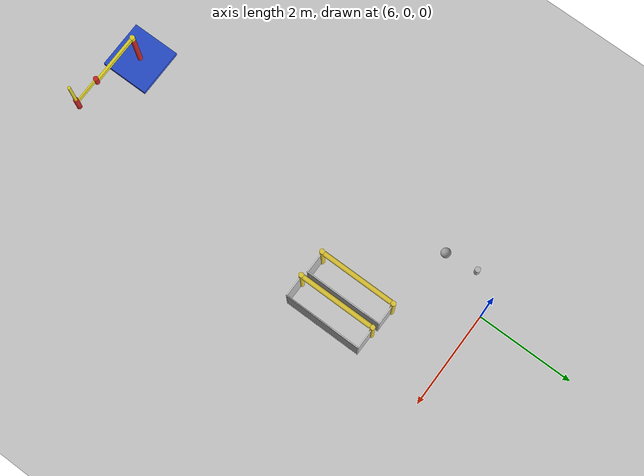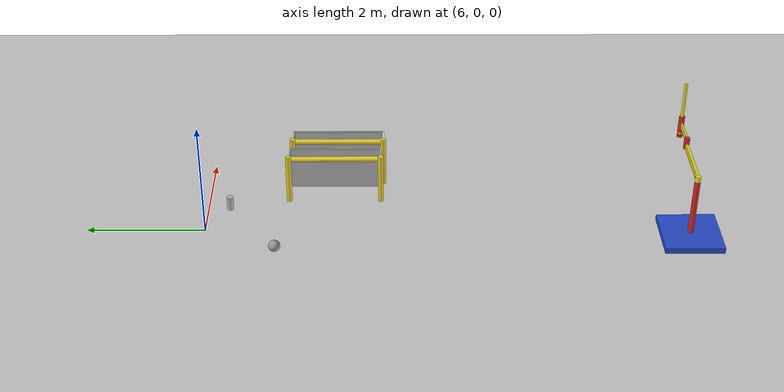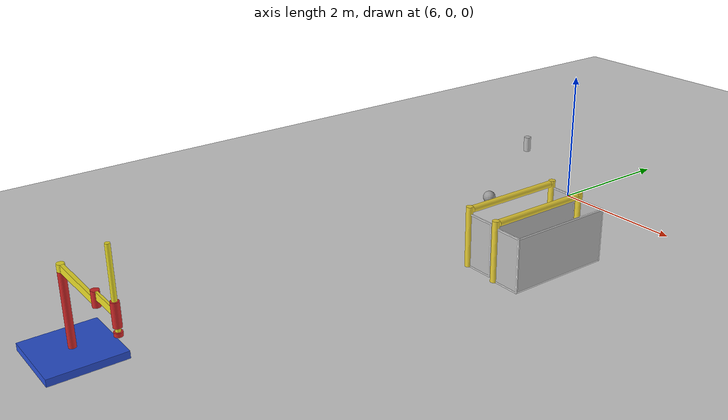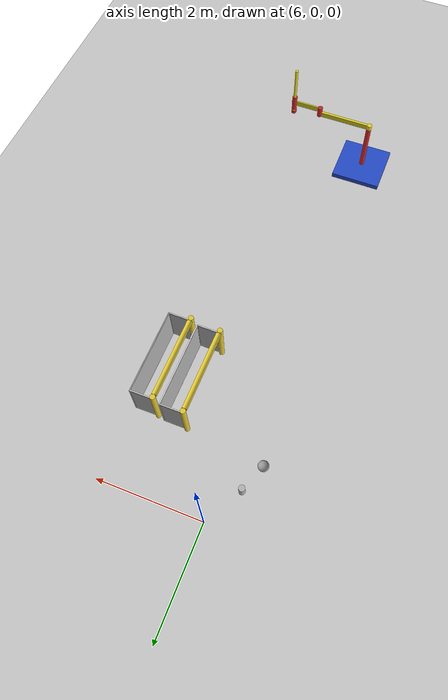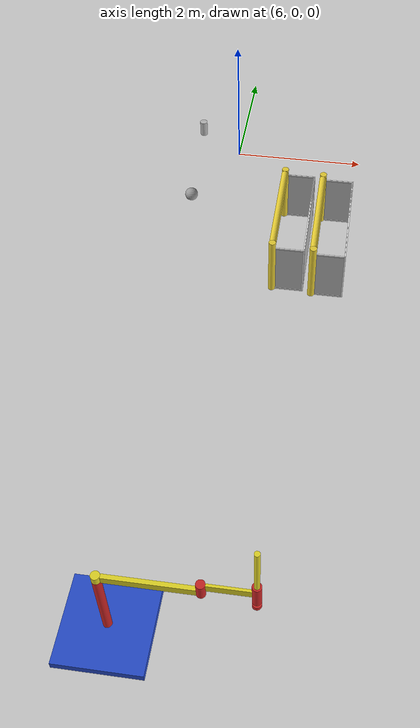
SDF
<sdf version="1.6">
 <world name="default">
  <model name="ground_plane">
   <static>1</static>
   <link name="link">
    <collision name="collision">
     <geometry><plane><normal>0 0 1</normal><size>100 100</size></plane></geometry>
     <surface><friction><ode><mu>100</mu><mu2>50</mu2></ode></friction></surface>
    </collision>
    <visual name="visual">
     <cast_shadows>0</cast_shadows>
     <geometry><plane><normal>0 0 1</normal><size>100 100</size></plane></geometry>
     <material>
      <script><uri>file://media/materials/scripts/gazebo.material</uri><name>Gazebo/Grey</name></script>
     </material>
    </visual>
   </link>
  </model>
  <model name="my_ball">
   <link name="link_0">
    <inertial>
     <mass>1</mass>
     <inertia><ixx>0.1</ixx><ixy>0</ixy><ixz>0</ixz><iyy>0.1</iyy><iyz>0</iyz><izz>0.1</izz></inertia>
    </inertial>
    <visual name="visual">
     <geometry><sphere><radius>0.1</radius></sphere></geometry>
     <material>
      <lighting>1</lighting>
      <script><uri>file://media/materials/scripts/gazebo.material</uri><name>Gazebo/Grey</name></script>
      <shader type="pixel"><normal_map>__default__</normal_map></shader>
      <ambient>1 1 1 1</ambient>
      <diffuse>1 1 1 1</diffuse>
      <specular>1 1 1 1</specular>
      <emissive>1 1 1 1</emissive>
     </material>
    </visual>
    <collision name="collision">
     <geometry><sphere><radius>0.1</radius></sphere></geometry>
     <surface>
      <friction>
       <ode><mu>1</mu><mu2>1</mu2><fdir1>0 0 0</fdir1><slip1>0</slip1><slip2>0</slip2></ode>
       <torsional>
        <coefficient>1</coefficient>
        <patch_radius>0</patch_radius>
        <surface_radius>0</surface_radius>
        <use_patch_radius>1</use_patch_radius>
        <ode><slip>0</slip></ode>
       </torsional>
      </friction>
      <bounce><restitution_coefficient>0</restitution_coefficient><threshold>1e+06</threshold></bounce>
      <contact>
       <collide_without_contact>0</collide_without_contact>
       <collide_without_contact_bitmask>1</collide_without_contact_bitmask>
       <collide_bitmask>1</collide_bitmask>
       <ode>
        <soft_cfm>0</soft_cfm>
        <soft_erp>0.2</soft_erp>
        <kp>1e+13</kp>
        <kd>1</kd>
        <max_vel>0.01</max_vel>
        <min_depth>0</min_depth>
       </ode>
       <bullet>
        <split_impulse>1</split_impulse>
        <split_impulse_penetration_threshold>-0.01</split_impulse_penetration_threshold>
        <soft_cfm>0</soft_cfm>
        <soft_erp>0.2</soft_erp>
        <kp>1e+13</kp>
        <kd>1</kd>
       </bullet>
      </contact>
     </surface>
    </collision>
   </link>
   <static>0</static>
   <pose>5.41442 -1.21795 0.1 0 -0 0</pose>
  </model>
  <model name="beer">
   <link name="link">
    <pose>0 0 0.115 0 -0 0</pose>
    <inertial>
     <mass>0.39</mass>
     <inertia><ixx>0.00058</ixx><ixy>0</ixy><ixz>0</ixz><iyy>0.00058</iyy><iyz>0</iyz><izz>0.00019</izz></inertia>
    </inertial>
    <collision name="collision">
     <geometry><cylinder><radius>0.055</radius><length>0.23</length></cylinder></geometry>
    </collision>
    <visual name="visual">
     <geometry><cylinder><radius>0.055</radius><length>0.23</length></cylinder></geometry>
     <material>
      <script>
       <uri>model://beer/materials/scripts</uri>
       <uri>model://beer/materials/textures</uri>
       <name>Beer/Diffuse</name>
      </script>
     </material>
    </visual>
   </link>
   <pose>5.52446 -0.527312 0.774991 3e-06 1.3e-05 0.000153</pose>
  </model>
  <model name="simple_arm">
   <link name="arm_base">
    <inertial>
     <pose>0 0 0.00099 0 -0 0</pose>
     <inertia><ixx>1.11</ixx><ixy>0</ixy><ixz>0</ixz><iyy>100.11</iyy><iyz>0</iyz><izz>1.01</izz></inertia>
     <mass>101</mass>
    </inertial>
    <collision name="arm_base_geom">
     <pose>0 0 0.05 0 -0 0</pose>
     <geometry><box><size>1 1 0.1</size></box></geometry>
    </collision>
    <visual name="arm_base_geom_visual">
     <pose>0 0 0.05 0 -0 0</pose>
     <geometry><box><size>1 1 0.1</size></box></geometry>
     <material>
      <script><uri>file://media/materials/scripts/gazebo.material</uri><name>Gazebo/Blue</name></script>
     </material>
    </visual>
    <collision name="arm_base_geom_arm_trunk">
     <pose>0 0 0.6 0 -0 0</pose>
     <geometry><cylinder><radius>0.05</radius><length>1</length></cylinder></geometry>
    </collision>
    <visual name="arm_base_geom_arm_trunk_visual">
     <pose>0 0 0.6 0 -0 0</pose>
     <geometry><cylinder><radius>0.05</radius><length>1</length></cylinder></geometry>
     <material>
      <script><uri>file://media/materials/scripts/gazebo.material</uri><name>Gazebo/Red</name></script>
     </material>
    </visual>
   </link>
   <link name="arm_shoulder_pan">
    <pose>0 0 1.1 0 -0 0</pose>
    <inertial>
     <pose>0.045455 0 0 0 -0 0</pose>
     <inertia><ixx>0.011</ixx><ixy>0</ixy><ixz>0</ixz><iyy>0.0225</iyy><iyz>0</iyz><izz>0.0135</izz></inertia>
     <mass>1.1</mass>
    </inertial>
    <collision name="arm_shoulder_pan_geom">
     <pose>0 0 0.05 0 -0 0</pose>
     <geometry><cylinder><radius>0.05</radius><length>0.1</length></cylinder></geometry>
    </collision>
    <visual name="arm_shoulder_pan_geom_visual">
     <pose>0 0 0.05 0 -0 0</pose>
     <geometry><cylinder><radius>0.05</radius><length>0.1</length></cylinder></geometry>
     <material>
      <script><uri>file://media/materials/scripts/gazebo.material</uri><name>Gazebo/Yellow</name></script>
     </material>
    </visual>
    <collision name="arm_shoulder_pan_geom_arm_shoulder">
     <pose>0.55 0 0.05 0 -0 0</pose>
     <geometry><box><size>1 0.05 0.1</size></box></geometry>
    </collision>
    <visual name="arm_shoulder_pan_geom_arm_shoulder_visual">
     <pose>0.55 0 0.05 0 -0 0</pose>
     <geometry><box><size>1 0.05 0.1</size></box></geometry>
     <material>
      <script><uri>file://media/materials/scripts/gazebo.material</uri><name>Gazebo/Yellow</name></script>
     </material>
    </visual>
   </link>
   <link name="arm_elbow_pan">
    <pose>1.05 0 1.1 0 -0 0</pose>
    <inertial>
     <pose>0.0875 0 0.083333 0 -0 0</pose>
     <inertia>
      <ixx>0.031</ixx>
      <ixy>0</ixy>
      <ixz>0.005</ixz>
      <iyy>0.07275</iyy>
      <iyz>0</iyz>
      <izz>0.04475</izz>
     </inertia>
     <mass>1.2</mass>
    </inertial>
    <collision name="arm_elbow_pan_geom">
     <pose>0 0 0.1 0 -0 0</pose>
     <geometry><cylinder><radius>0.05</radius><length>0.2</length></cylinder></geometry>
    </collision>
    <visual name="arm_elbow_pan_geom_visual">
     <pose>0 0 0.1 0 -0 0</pose>
     <geometry><cylinder><radius>0.05</radius><length>0.2</length></cylinder></geometry>
     <material>
      <script><uri>file://media/materials/scripts/gazebo.material</uri><name>Gazebo/Red</name></script>
     </material>
    </visual>
    <collision name="arm_elbow_pan_geom_arm_elbow">
     <pose>0.3 0 0.15 0 -0 0</pose>
     <geometry><box><size>0.5 0.03 0.1</size></box></geometry>
    </collision>
    <visual name="arm_elbow_pan_geom_arm_elbow_visual">
     <pose>0.3 0 0.15 0 -0 0</pose>
     <geometry><box><size>0.5 0.03 0.1</size></box></geometry>
     <material>
      <script><uri>file://media/materials/scripts/gazebo.material</uri><name>Gazebo/Yellow</name></script>
     </material>
    </visual>
    <collision name="arm_elbow_pan_geom_arm_wrist">
     <pose>0.55 0 0.15 0 -0 0</pose>
     <geometry><cylinder><radius>0.05</radius><length>0.3</length></cylinder></geometry>
    </collision>
    <visual name="arm_elbow_pan_geom_arm_wrist_visual">
     <pose>0.55 0 0.15 0 -0 0</pose>
     <geometry><cylinder><radius>0.05</radius><length>0.3</length></cylinder></geometry>
     <material>
      <script><uri>file://media/materials/scripts/gazebo.material</uri><name>Gazebo/Red</name></script>
     </material>
    </visual>
   </link>
   <link name="arm_wrist_lift">
    <pose>1.6 0 1.05 0 -0 0</pose>
    <inertial>
     <inertia><ixx>0.01</ixx><ixy>0</ixy><ixz>0</ixz><iyy>0.01</iyy><iyz>0</iyz><izz>0.001</izz></inertia>
     <mass>0.1</mass>
    </inertial>
    <collision name="arm_wrist_lift_geom">
     <pose>0 0 0.5 0 -0 0</pose>
     <geometry><cylinder><radius>0.03</radius><length>1</length></cylinder></geometry>
    </collision>
    <visual name="arm_wrist_lift_geom_visual">
     <pose>0 0 0.5 0 -0 0</pose>
     <geometry><cylinder><radius>0.03</radius><length>1</length></cylinder></geometry>
     <material>
      <script><uri>file://media/materials/scripts/gazebo.material</uri><name>Gazebo/Yellow</name></script>
     </material>
    </visual>
   </link>
   <link name="arm_wrist_roll">
    <pose>1.6 0 1 0 -0 0</pose>
    <inertial>
     <inertia><ixx>0.01</ixx><ixy>0</ixy><ixz>0</ixz><iyy>0.01</iyy><iyz>0</iyz><izz>0.001</izz></inertia>
     <mass>0.1</mass>
    </inertial>
    <collision name="arm_wrist_roll_geom">
     <pose>0 0 0.025 0 -0 0</pose>
     <geometry><cylinder><radius>0.05</radius><length>0.05</length></cylinder></geometry>
    </collision>
    <visual name="arm_wrist_roll_geom_visual">
     <pose>0 0 0.025 0 -0 0</pose>
     <geometry><cylinder><radius>0.05</radius><length>0.05</length></cylinder></geometry>
     <material>
      <script><uri>file://media/materials/scripts/gazebo.material</uri><name>Gazebo/Red</name></script>
     </material>
    </visual>
   </link>
   <joint name="arm_shoulder_pan_joint" type="revolute">
    <parent>arm_base</parent>
    <child>arm_shoulder_pan</child>
    <axis>
     <dynamics>
      <damping>1</damping>
      <friction>0</friction>
      <spring_reference>0</spring_reference>
      <spring_stiffness>0</spring_stiffness>
     </dynamics>
     <xyz>0 0 1</xyz>
     <use_parent_model_frame>1</use_parent_model_frame>
     <limit><lower>-1e+16</lower><upper>1e+16</upper></limit>
    </axis>
   </joint>
   <joint name="arm_elbow_pan_joint" type="revolute">
    <parent>arm_shoulder_pan</parent>
    <child>arm_elbow_pan</child>
    <axis>
     <dynamics>
      <damping>1</damping>
      <friction>0</friction>
      <spring_reference>0</spring_reference>
      <spring_stiffness>0</spring_stiffness>
     </dynamics>
     <xyz>0 0 1</xyz>
     <use_parent_model_frame>1</use_parent_model_frame>
     <limit><lower>-1e+16</lower><upper>1e+16</upper></limit>
    </axis>
   </joint>
   <joint name="arm_wrist_lift_joint" type="prismatic">
    <parent>arm_elbow_pan</parent>
    <child>arm_wrist_lift</child>
    <axis>
     <dynamics>
      <damping>1</damping>
      <friction>0</friction>
      <spring_reference>0</spring_reference>
      <spring_stiffness>0</spring_stiffness>
     </dynamics>
     <limit><lower>-0.8</lower><upper>0.1</upper></limit>
     <xyz>0 0 1</xyz>
     <use_parent_model_frame>1</use_parent_model_frame>
    </axis>
   </joint>
   <joint name="arm_wrist_roll_joint" type="revolute">
    <parent>arm_wrist_lift</parent>
    <child>arm_wrist_roll</child>
    <axis>
     <dynamics>
      <damping>1</damping>
      <friction>0</friction>
      <spring_reference>0</spring_reference>
      <spring_stiffness>0</spring_stiffness>
     </dynamics>
     <limit><lower>-2.99999</lower><upper>2.99999</upper></limit>
     <xyz>0 0 1</xyz>
     <use_parent_model_frame>1</use_parent_model_frame>
    </axis>
   </joint>
   <pose>5.81232 -8.21556 0 0 -0 0.001349</pose>
  </model>
  <model name="RoboCup 2014 SPL Goal">
   <static>1</static>
   <link name="left_post">
    <pose>0 0.8 0.45 0 -0 0</pose>
    <collision name="collision">
     <geometry><cylinder><radius>0.05</radius><length>0.9</length></cylinder></geometry>
    </collision>
    <visual name="visual">
     <geometry><cylinder><radius>0.05</radius><length>0.9</length></cylinder></geometry>
     <material>
      <script><uri>file://media/materials/scripts/gazebo.material</uri><name>Gazebo/ZincYellow</name></script>
     </material>
    </visual>
   </link>
   <link name="left_support_horiz_lower">
    <pose>0.24 0.8 0.01 0 -0 0</pose>
    <collision name="collision"><geometry><box><size>0.38 0.02 0.02</size></box></geometry></collision>
    <visual name="visual">
     <geometry><box><size>0.38 0.02 0.02</size></box></geometry>
     <material>
      <script><uri>file://media/materials/scripts/gazebo.material</uri><name>Gazebo/White</name></script>
     </material>
    </visual>
   </link>
   <link name="left_support_horiz_upper">
    <pose>0.24 0.8 0.79 0 -0 0</pose>
    <collision name="collision"><geometry><box><size>0.38 0.02 0.02</size></box></geometry></collision>
    <visual name="visual">
     <geometry><box><size>0.38 0.02 0.02</size></box></geometry>
     <material>
      <script><uri>file://media/materials/scripts/gazebo.material</uri><name>Gazebo/White</name></script>
     </material>
    </visual>
   </link>
   <link name="left_support_vertical">
    <pose>0.44 0.8 0.4 3.14159 1.57079 3.14159</pose>
    <collision name="collision"><geometry><box><size>0.8 0.02 0.02</size></box></geometry></collision>
    <visual name="visual">
     <geometry><box><size>0.8 0.02 0.02</size></box></geometry>
     <material>
      <script><uri>file://media/materials/scripts/gazebo.material</uri><name>Gazebo/White</name></script>
     </material>
    </visual>
   </link>
   <link name="right_support_horiz_lower">
    <pose>0.24 -0.8 0.01 0 -0 0</pose>
    <collision name="collision"><geometry><box><size>0.38 0.02 0.02</size></box></geometry></collision>
    <visual name="visual">
     <geometry><box><size>0.38 0.02 0.02</size></box></geometry>
     <material>
      <script><uri>file://media/materials/scripts/gazebo.material</uri><name>Gazebo/White</name></script>
     </material>
    </visual>
   </link>
   <link name="right_support_horiz_upper">
    <pose>0.24 -0.8 0.79 0 -0 0</pose>
    <collision name="collision"><geometry><box><size>0.38 0.02 0.02</size></box></geometry></collision>
    <visual name="visual">
     <geometry><box><size>0.38 0.02 0.02</size></box></geometry>
     <material>
      <script><uri>file://media/materials/scripts/gazebo.material</uri><name>Gazebo/White</name></script>
     </material>
    </visual>
   </link>
   <link name="right_support_vertical">
    <pose>0.44 -0.8 0.4 3.14159 1.57079 3.14159</pose>
    <collision name="collision"><geometry><box><size>0.8 0.02 0.02</size></box></geometry></collision>
    <visual name="visual">
     <geometry><box><size>0.8 0.02 0.02</size></box></geometry>
     <material>
      <script><uri>file://media/materials/scripts/gazebo.material</uri><name>Gazebo/White</name></script>
     </material>
    </visual>
   </link>
   <link name="center_support_horiz_lower">
    <pose>0.44 0 0.01 3.14159 1.57079 3.14159</pose>
    <collision name="collision"><geometry><box><size>0.02 1.58 0.02</size></box></geometry></collision>
    <visual name="visual">
     <geometry><box><size>0.02 1.58 0.02</size></box></geometry>
     <material>
      <script><uri>file://media/materials/scripts/gazebo.material</uri><name>Gazebo/White</name></script>
     </material>
    </visual>
   </link>
   <link name="center_support_horiz_upper">
    <pose>0.44 0 0.79 3.14159 1.57079 3.14159</pose>
    <collision name="collision"><geometry><box><size>0.02 1.58 0.02</size></box></geometry></collision>
    <visual name="visual">
     <geometry><box><size>0.02 1.58 0.02</size></box></geometry>
     <material>
      <script><uri>file://media/materials/scripts/gazebo.material</uri><name>Gazebo/White</name></script>
     </material>
    </visual>
   </link>
   <link name="right_post">
    <pose>0 -0.8 0.45 0 -0 0</pose>
    <collision name="collision">
     <geometry><cylinder><radius>0.05</radius><length>0.9</length></cylinder></geometry>
    </collision>
    <visual name="visual">
     <geometry><cylinder><radius>0.05</radius><length>0.9</length></cylinder></geometry>
     <material>
      <script><uri>file://media/materials/scripts/gazebo.material</uri><name>Gazebo/ZincYellow</name></script>
     </material>
    </visual>
   </link>
   <link name="crossbar">
    <pose>0 0 0.85 1.57 1.57 0</pose>
    <collision name="collision">
     <geometry><cylinder><radius>0.05</radius><length>1.5</length></cylinder></geometry>
    </collision>
    <visual name="visual">
     <geometry><cylinder><radius>0.05</radius><length>1.5</length></cylinder></geometry>
     <material>
      <script><uri>file://media/materials/scripts/gazebo.material</uri><name>Gazebo/ZincYellow</name></script>
     </material>
    </visual>
   </link>
   <link name="center_net">
    <pose>0.44 0 0.4 0 -0 0</pose>
    <collision name="collision"><geometry><box><size>0.01 1.6 0.8</size></box></geometry></collision>
    <visual name="visual">
     <geometry><box><size>0.01 1.6 0.8</size></box></geometry>
     <material>
      <script>
       <uri>model://robocup09_spl_field/materials/scripts/</uri>
       <uri>model://robocup09_spl_field/materials/textures/</uri>
       <name>RoboCup/Net</name>
      </script>
     </material>
    </visual>
   </link>
   <link name="left_net">
    <pose>0.24 0.8 0.4 0 -0 0</pose>
    <collision name="collision"><geometry><box><size>0.38 0.01 0.76</size></box></geometry></collision>
    <visual name="visual">
     <geometry><box><size>0.38 0.01 0.76</size></box></geometry>
     <material>
      <script>
       <uri>model://robocup09_spl_field/materials/scripts/</uri>
       <uri>model://robocup09_spl_field/materials/textures/</uri>
       <name>RoboCup/Net</name>
      </script>
     </material>
    </visual>
   </link>
   <link name="right_net">
    <pose>0.24 -0.8 0.4 0 -0 0</pose>
    <collision name="collision"><geometry><box><size>0.38 0.01 0.76</size></box></geometry></collision>
    <visual name="visual">
     <geometry><box><size>0.38 0.01 0.76</size></box></geometry>
     <material>
      <script>
       <uri>model://robocup09_spl_field/materials/scripts/</uri>
       <uri>model://robocup09_spl_field/materials/textures/</uri>
       <name>RoboCup/Net</name>
      </script>
     </material>
    </visual>
   </link>
   <pose>6.91215 -2.18608 0 0 -0 0</pose>
  </model>
  <model name="RoboCup 2014 SPL Goal_0">
   <static>1</static>
   <link name="left_post">
    <pose>0 0.8 0.45 0 -0 0</pose>
    <collision name="collision">
     <geometry><cylinder><radius>0.05</radius><length>0.9</length></cylinder></geometry>
    </collision>
    <visual name="visual">
     <geometry><cylinder><radius>0.05</radius><length>0.9</length></cylinder></geometry>
     <material>
      <script><uri>file://media/materials/scripts/gazebo.material</uri><name>Gazebo/ZincYellow</name></script>
     </material>
    </visual>
   </link>
   <link name="left_support_horiz_lower">
    <pose>0.24 0.8 0.01 0 -0 0</pose>
    <collision name="collision"><geometry><box><size>0.38 0.02 0.02</size></box></geometry></collision>
    <visual name="visual">
     <geometry><box><size>0.38 0.02 0.02</size></box></geometry>
     <material>
      <script><uri>file://media/materials/scripts/gazebo.material</uri><name>Gazebo/White</name></script>
     </material>
    </visual>
   </link>
   <link name="left_support_horiz_upper">
    <pose>0.24 0.8 0.79 0 -0 0</pose>
    <collision name="collision"><geometry><box><size>0.38 0.02 0.02</size></box></geometry></collision>
    <visual name="visual">
     <geometry><box><size>0.38 0.02 0.02</size></box></geometry>
     <material>
      <script><uri>file://media/materials/scripts/gazebo.material</uri><name>Gazebo/White</name></script>
     </material>
    </visual>
   </link>
   <link name="left_support_vertical">
    <pose>0.44 0.8 0.4 3.14159 1.57079 3.14159</pose>
    <collision name="collision"><geometry><box><size>0.8 0.02 0.02</size></box></geometry></collision>
    <visual name="visual">
     <geometry><box><size>0.8 0.02 0.02</size></box></geometry>
     <material>
      <script><uri>file://media/materials/scripts/gazebo.material</uri><name>Gazebo/White</name></script>
     </material>
    </visual>
   </link>
   <link name="right_support_horiz_lower">
    <pose>0.24 -0.8 0.01 0 -0 0</pose>
    <collision name="collision"><geometry><box><size>0.38 0.02 0.02</size></box></geometry></collision>
    <visual name="visual">
     <geometry><box><size>0.38 0.02 0.02</size></box></geometry>
     <material>
      <script><uri>file://media/materials/scripts/gazebo.material</uri><name>Gazebo/White</name></script>
     </material>
    </visual>
   </link>
   <link name="right_support_horiz_upper">
    <pose>0.24 -0.8 0.79 0 -0 0</pose>
    <collision name="collision"><geometry><box><size>0.38 0.02 0.02</size></box></geometry></collision>
    <visual name="visual">
     <geometry><box><size>0.38 0.02 0.02</size></box></geometry>
     <material>
      <script><uri>file://media/materials/scripts/gazebo.material</uri><name>Gazebo/White</name></script>
     </material>
    </visual>
   </link>
   <link name="right_support_vertical">
    <pose>0.44 -0.8 0.4 3.14159 1.57079 3.14159</pose>
    <collision name="collision"><geometry><box><size>0.8 0.02 0.02</size></box></geometry></collision>
    <visual name="visual">
     <geometry><box><size>0.8 0.02 0.02</size></box></geometry>
     <material>
      <script><uri>file://media/materials/scripts/gazebo.material</uri><name>Gazebo/White</name></script>
     </material>
    </visual>
   </link>
   <link name="center_support_horiz_lower">
    <pose>0.44 0 0.01 3.14159 1.57079 3.14159</pose>
    <collision name="collision"><geometry><box><size>0.02 1.58 0.02</size></box></geometry></collision>
    <visual name="visual">
     <geometry><box><size>0.02 1.58 0.02</size></box></geometry>
     <material>
      <script><uri>file://media/materials/scripts/gazebo.material</uri><name>Gazebo/White</name></script>
     </material>
    </visual>
   </link>
   <link name="center_support_horiz_upper">
    <pose>0.44 0 0.79 3.14159 1.57079 3.14159</pose>
    <collision name="collision"><geometry><box><size>0.02 1.58 0.02</size></box></geometry></collision>
    <visual name="visual">
     <geometry><box><size>0.02 1.58 0.02</size></box></geometry>
     <material>
      <script><uri>file://media/materials/scripts/gazebo.material</uri><name>Gazebo/White</name></script>
     </material>
    </visual>
   </link>
   <link name="right_post">
    <pose>0 -0.8 0.45 0 -0 0</pose>
    <collision name="collision">
     <geometry><cylinder><radius>0.05</radius><length>0.9</length></cylinder></geometry>
    </collision>
    <visual name="visual">
     <geometry><cylinder><radius>0.05</radius><length>0.9</length></cylinder></geometry>
     <material>
      <script><uri>file://media/materials/scripts/gazebo.material</uri><name>Gazebo/ZincYellow</name></script>
     </material>
    </visual>
   </link>
   <link name="crossbar">
    <pose>0 0 0.85 1.57 1.57 0</pose>
    <collision name="collision">
     <geometry><cylinder><radius>0.05</radius><length>1.5</length></cylinder></geometry>
    </collision>
    <visual name="visual">
     <geometry><cylinder><radius>0.05</radius><length>1.5</length></cylinder></geometry>
     <material>
      <script><uri>file://media/materials/scripts/gazebo.material</uri><name>Gazebo/ZincYellow</name></script>
     </material>
    </visual>
   </link>
   <link name="center_net">
    <pose>0.44 0 0.4 0 -0 0</pose>
    <collision name="collision"><geometry><box><size>0.01 1.6 0.8</size></box></geometry></collision>
    <visual name="visual">
     <geometry><box><size>0.01 1.6 0.8</size></box></geometry>
     <material>
      <script>
       <uri>model://robocup09_spl_field/materials/scripts/</uri>
       <uri>model://robocup09_spl_field/materials/textures/</uri>
       <name>RoboCup/Net</name>
      </script>
     </material>
    </visual>
   </link>
   <link name="left_net">
    <pose>0.24 0.8 0.4 0 -0 0</pose>
    <collision name="collision"><geometry><box><size>0.38 0.01 0.76</size></box></geometry></collision>
    <visual name="visual">
     <geometry><box><size>0.38 0.01 0.76</size></box></geometry>
     <material>
      <script>
       <uri>model://robocup09_spl_field/materials/scripts/</uri>
       <uri>model://robocup09_spl_field/materials/textures/</uri>
       <name>RoboCup/Net</name>
      </script>
     </material>
    </visual>
   </link>
   <link name="right_net">
    <pose>0.24 -0.8 0.4 0 -0 0</pose>
    <collision name="collision"><geometry><box><size>0.38 0.01 0.76</size></box></geometry></collision>
    <visual name="visual">
     <geometry><box><size>0.38 0.01 0.76</size></box></geometry>
     <material>
      <script>
       <uri>model://robocup09_spl_field/materials/scripts/</uri>
       <uri>model://robocup09_spl_field/materials/textures/</uri>
       <name>RoboCup/Net</name>
      </script>
     </material>
    </visual>
   </link>
   <pose>7.48452 -2.22988 0 0 -0 0</pose>
  </model>
 </world>
</sdf>
